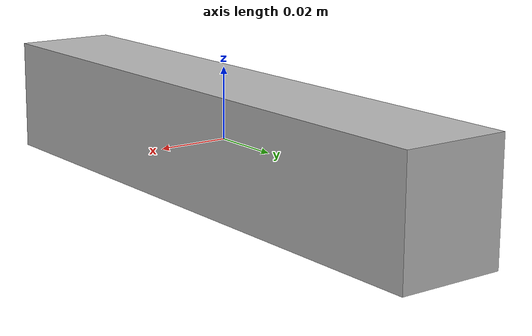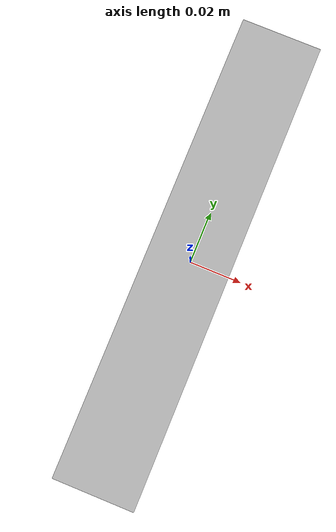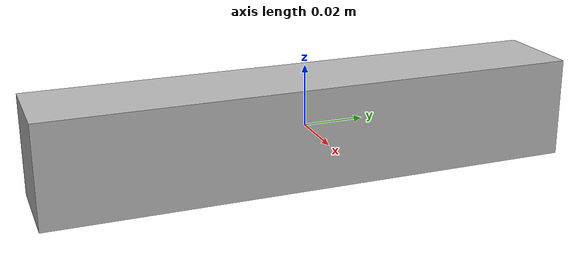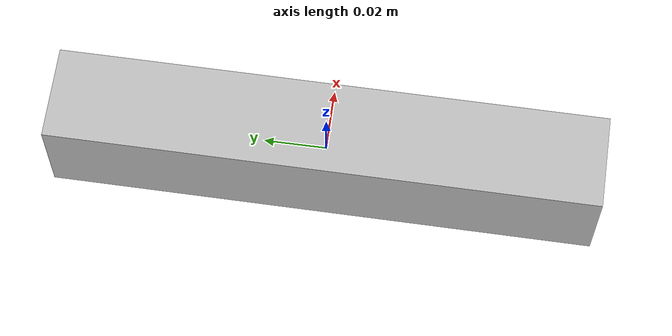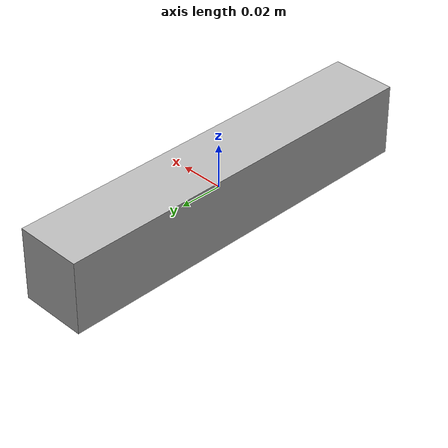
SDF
<?xml version="1.0"?>
<sdf version="1.6">
  <model name="zed_camera">
    <!-- This is a stereo camera, so we define two cameras individually -->
    <link name="zed_camera_base">
      <sensor type="camera" name="cam_left">
        <pose>0.06 0 0 0 0 1.5707</pose>
        <always_on>1</always_on>
        <visualize>true</visualize>
        <update_rate>30</update_rate>
        <camera>
          <!-- Grab horizontal FOV from datasheet -->
          <horizontal_fov>1.5707963268</horizontal_fov>
          <image>
            <!-- Image resolution at 30 FPS is 3840x1080 -->
            <width>3840</width>
            <height>1080</height>
          </image>
          <clip>
            <near>0.5</near>
            <far>100</far>
          </clip>
        </camera>
      </sensor>
      <sensor type="camera" name="cam_right">
        <pose>-0.06 0 0 0 0 1.5707</pose>
        <always_on>1</always_on>
        <visualize>true</visualize>
        <update_rate>30</update_rate>
        <camera>
          <!-- Grab horizontal FOV from datasheet -->
          <horizontal_fov>1.5707963268</horizontal_fov>
          <image>
            <!-- Image resolution at 30 FPS is 3840x1080 -->
            <width>3840</width>
            <height>1080</height>
          </image>
          <clip>
            <near>0.5</near>
            <far>100</far>
          </clip>
        </camera>
      </sensor>
      <pose>0 0 0 0 0 -1.5707</pose>
      <inertial>
        <mass>0.135</mass>
        <inertia>
          <ixx>0.00022376</ixx>
          <iyy>0.003568</iyy>
          <izz>0.0035466</izz>
          <ixy>0</ixy>
          <ixz>0</ixz>
          <iyz>0</iyz>
        </inertia>
      </inertial>
      <collision name="collision">
        <geometry>
          <box>
            <size>0.175 0.03 0.033</size>
          </box>
        </geometry>
      </collision>
      <visual name="visual">
        <geometry>
          <box>
            <size>0.175 0.03 0.033</size>
          </box>
        </geometry>
      </visual>
    </link>
  </model>
</sdf>
